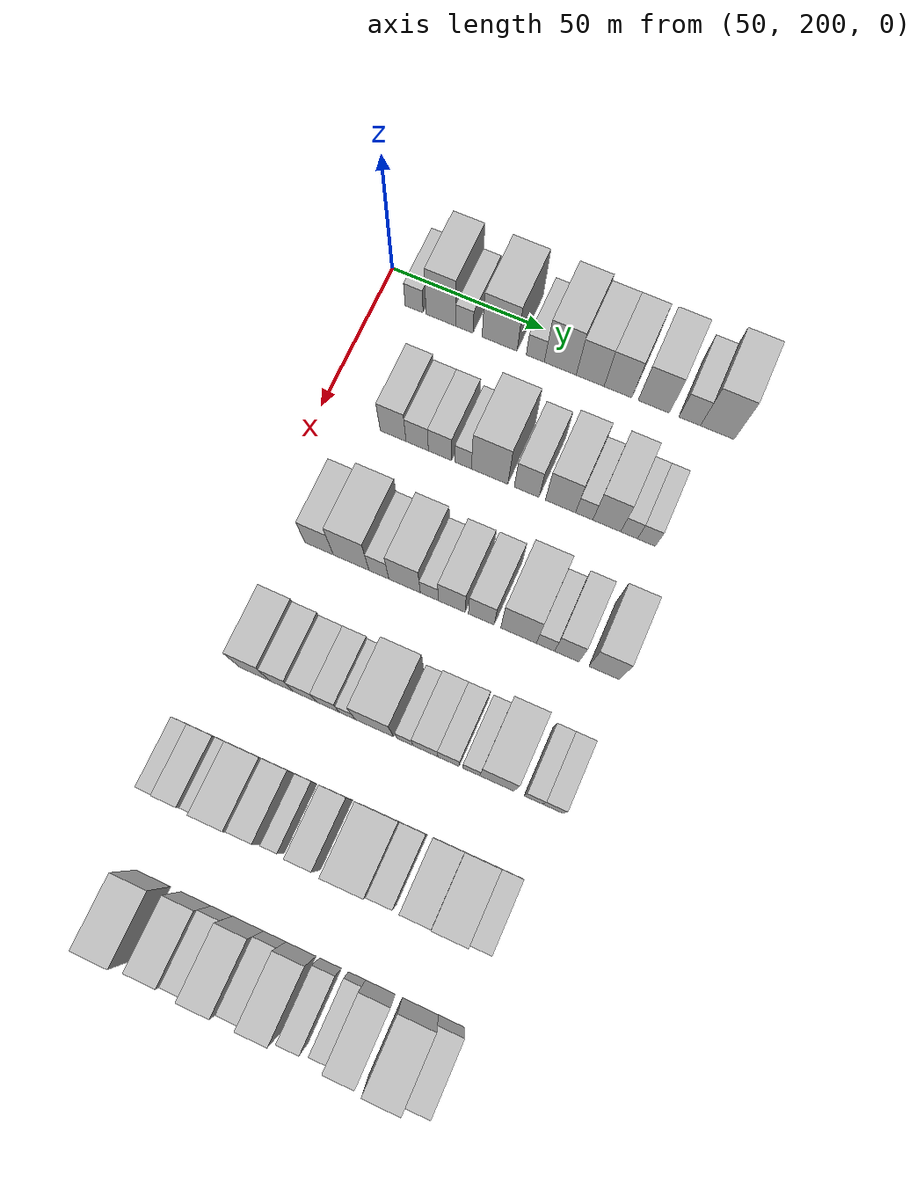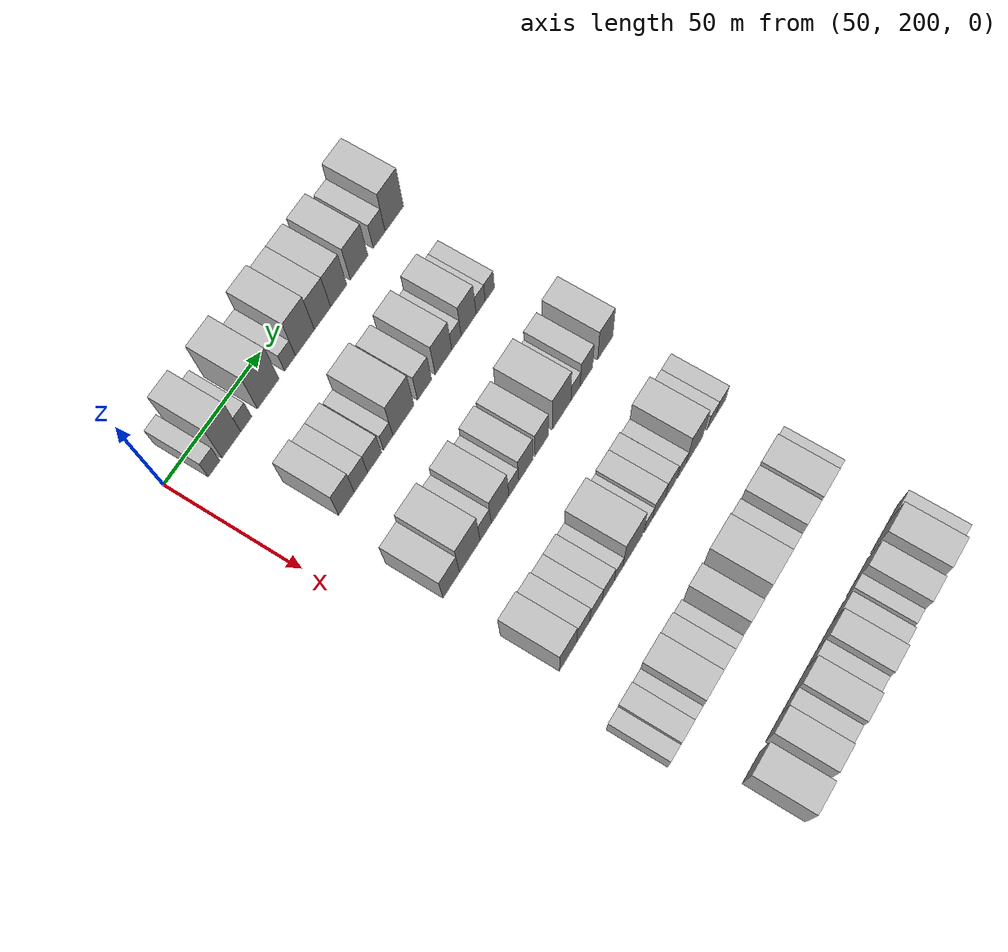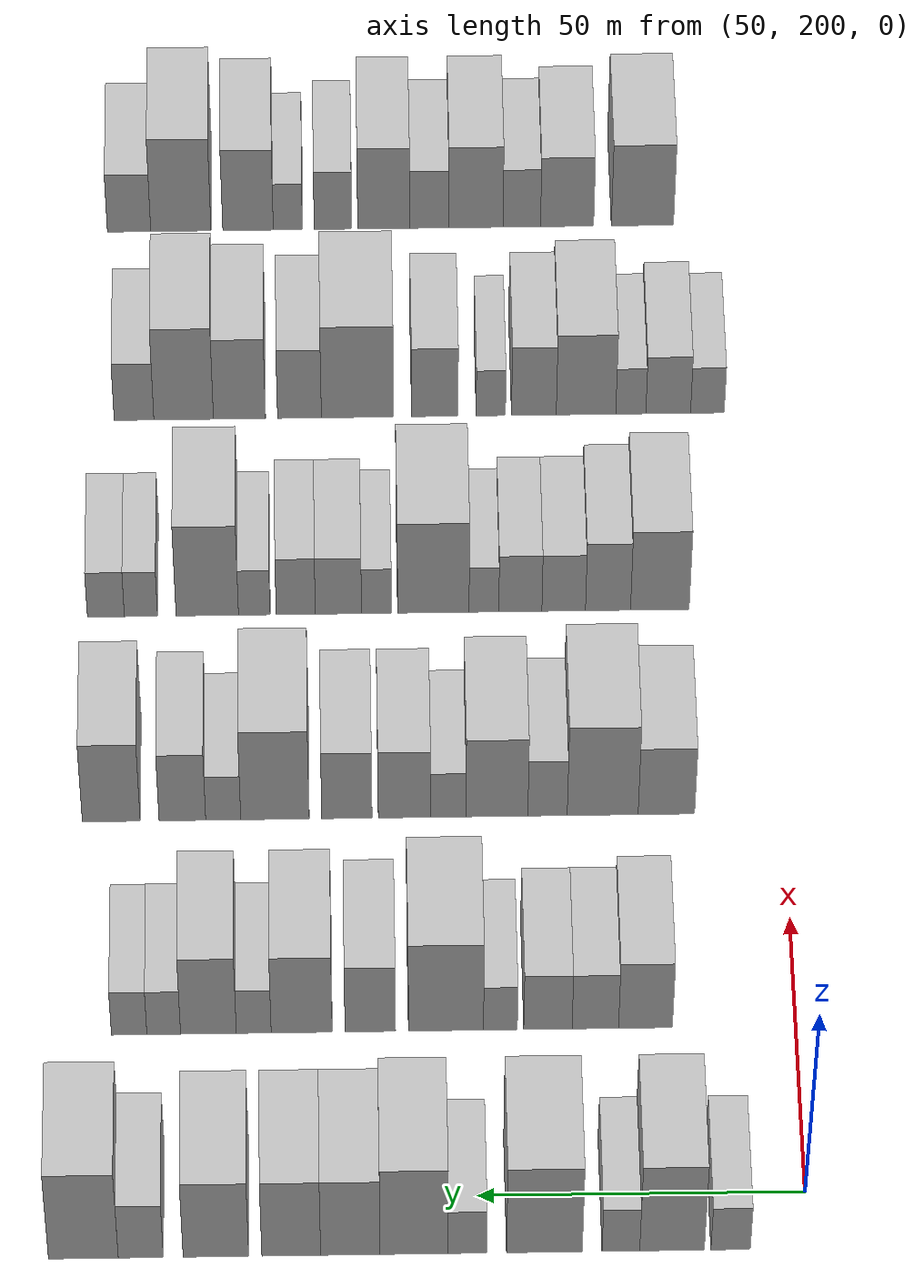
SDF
<sdf version="1.6">
 <world name="default">
  <model name="building_86">
   <static>1</static>
   <pose>50.0000 211.8494 0 0.000000 0.000000 0.000000</pose>
   <link name="link">
    <pose>0 0 6.00 0 0 0</pose>
    <collision name="collision"><geometry><box><size>20.0000 5.9674 12.0000</size></box></geometry></collision>
    <visual name="visual">
     <cast_shadows>0</cast_shadows>
     <geometry><box><size>20.0000 5.9674 12.0000</size></box></geometry>
     <material>
      <script>
       <uri>model://HANNAS_wall/materials/scripts</uri>
       <uri>model://HANNAS_wall/materials/textures</uri>
       <name>vrc/HANNAS_wall</name>
      </script>
     </material>
    </visual>
   </link>
  </model>
  <model name="building_87">
   <static>1</static>
   <pose>50.0000 220.7346 0 0.000000 0.000000 0.000000</pose>
   <link name="link">
    <pose>0 0 12.00 0 0 0</pose>
    <collision name="collision"><geometry><box><size>20.0000 9.8029 24.0000</size></box></geometry></collision>
    <visual name="visual">
     <cast_shadows>0</cast_shadows>
     <geometry><box><size>20.0000 9.8029 24.0000</size></box></geometry>
     <material>
      <script>
       <uri>model://HANNAS_wall/materials/scripts</uri>
       <uri>model://HANNAS_wall/materials/textures</uri>
       <name>vrc/HANNAS_wall</name>
      </script>
     </material>
    </visual>
   </link>
  </model>
  <model name="building_88">
   <static>1</static>
   <pose>50.0000 228.4900 0 0.000000 0.000000 0.000000</pose>
   <link name="link">
    <pose>0 0 6.00 0 0 0</pose>
    <collision name="collision"><geometry><box><size>20.0000 5.7079 12.0000</size></box></geometry></collision>
    <visual name="visual">
     <cast_shadows>0</cast_shadows>
     <geometry><box><size>20.0000 5.7079 12.0000</size></box></geometry>
     <material>
      <script>
       <uri>model://HANNAS_wall/materials/scripts</uri>
       <uri>model://HANNAS_wall/materials/textures</uri>
       <name>vrc/HANNAS_wall</name>
      </script>
     </material>
    </visual>
   </link>
  </model>
  <model name="building_89">
   <static>1</static>
   <pose>50.0000 240.0801 0 0.000000 0.000000 0.000000</pose>
   <link name="link">
    <pose>0 0 12.00 0 0 0</pose>
    <collision name="collision"><geometry><box><size>20.0000 11.4722 24.0000</size></box></geometry></collision>
    <visual name="visual">
     <cast_shadows>0</cast_shadows>
     <geometry><box><size>20.0000 11.4722 24.0000</size></box></geometry>
     <material>
      <script>
       <uri>model://HANNAS_wall/materials/scripts</uri>
       <uri>model://HANNAS_wall/materials/textures</uri>
       <name>vrc/HANNAS_wall</name>
      </script>
     </material>
    </visual>
   </link>
  </model>
  <model name="building_90">
   <static>1</static>
   <pose>50.0000 251.7598 0 0.000000 0.000000 0.000000</pose>
   <link name="link">
    <pose>0 0 6.00 0 0 0</pose>
    <collision name="collision"><geometry><box><size>20.0000 5.8871 12.0000</size></box></geometry></collision>
    <visual name="visual">
     <cast_shadows>0</cast_shadows>
     <geometry><box><size>20.0000 5.8871 12.0000</size></box></geometry>
     <material>
      <script>
       <uri>model://HANNAS_wall/materials/scripts</uri>
       <uri>model://HANNAS_wall/materials/textures</uri>
       <name>vrc/HANNAS_wall</name>
      </script>
     </material>
    </visual>
   </link>
  </model>
  <model name="building_91">
   <static>1</static>
   <pose>50.0000 259.8462 0 0.000000 0.000000 0.000000</pose>
   <link name="link">
    <pose>0 0 12.00 0 0 0</pose>
    <collision name="collision"><geometry><box><size>20.0000 10.2856 24.0000</size></box></geometry></collision>
    <visual name="visual">
     <cast_shadows>0</cast_shadows>
     <geometry><box><size>20.0000 10.2856 24.0000</size></box></geometry>
     <material>
      <script>
       <uri>model://HANNAS_wall/materials/scripts</uri>
       <uri>model://HANNAS_wall/materials/textures</uri>
       <name>vrc/HANNAS_wall</name>
      </script>
     </material>
    </visual>
   </link>
  </model>
  <model name="building_92">
   <static>1</static>
   <pose>50.0000 269.4874 0 0.000000 0.000000 0.000000</pose>
   <link name="link">
    <pose>0 0 10.50 0 0 0</pose>
    <collision name="collision"><geometry><box><size>20.0000 8.9970 21.0000</size></box></geometry></collision>
    <visual name="visual">
     <cast_shadows>0</cast_shadows>
     <geometry><box><size>20.0000 8.9970 21.0000</size></box></geometry>
     <material>
      <script>
       <uri>model://HANNAS_wall/materials/scripts</uri>
       <uri>model://HANNAS_wall/materials/textures</uri>
       <name>vrc/HANNAS_wall</name>
      </script>
     </material>
    </visual>
   </link>
  </model>
  <model name="building_93">
   <static>1</static>
   <pose>50.0000 278.4391 0 0.000000 0.000000 0.000000</pose>
   <link name="link">
    <pose>0 0 10.50 0 0 0</pose>
    <collision name="collision"><geometry><box><size>20.0000 8.9065 21.0000</size></box></geometry></collision>
    <visual name="visual">
     <cast_shadows>0</cast_shadows>
     <geometry><box><size>20.0000 8.9065 21.0000</size></box></geometry>
     <material>
      <script>
       <uri>model://HANNAS_wall/materials/scripts</uri>
       <uri>model://HANNAS_wall/materials/textures</uri>
       <name>vrc/HANNAS_wall</name>
      </script>
     </material>
    </visual>
   </link>
  </model>
  <model name="building_94">
   <static>1</static>
   <pose>50.0000 289.8566 0 0.000000 0.000000 0.000000</pose>
   <link name="link">
    <pose>0 0 10.50 0 0 0</pose>
    <collision name="collision"><geometry><box><size>20.0000 9.9284 21.0000</size></box></geometry></collision>
    <visual name="visual">
     <cast_shadows>0</cast_shadows>
     <geometry><box><size>20.0000 9.9284 21.0000</size></box></geometry>
     <material>
      <script>
       <uri>model://HANNAS_wall/materials/scripts</uri>
       <uri>model://HANNAS_wall/materials/textures</uri>
       <name>vrc/HANNAS_wall</name>
      </script>
     </material>
    </visual>
   </link>
  </model>
  <model name="building_95">
   <static>1</static>
   <pose>50.0000 301.2341 0 0.000000 0.000000 0.000000</pose>
   <link name="link">
    <pose>0 0 7.50 0 0 0</pose>
    <collision name="collision"><geometry><box><size>20.0000 6.8267 15.0000</size></box></geometry></collision>
    <visual name="visual">
     <cast_shadows>0</cast_shadows>
     <geometry><box><size>20.0000 6.8267 15.0000</size></box></geometry>
     <material>
      <script>
       <uri>model://HANNAS_wall/materials/scripts</uri>
       <uri>model://HANNAS_wall/materials/textures</uri>
       <name>vrc/HANNAS_wall</name>
      </script>
     </material>
    </visual>
   </link>
  </model>
  <model name="building_96">
   <static>1</static>
   <pose>50.0000 309.9277 0 0.000000 0.000000 0.000000</pose>
   <link name="link">
    <pose>0 0 12.00 0 0 0</pose>
    <collision name="collision"><geometry><box><size>20.0000 10.5604 24.0000</size></box></geometry></collision>
    <visual name="visual">
     <cast_shadows>0</cast_shadows>
     <geometry><box><size>20.0000 10.5604 24.0000</size></box></geometry>
     <material>
      <script>
       <uri>model://HANNAS_wall/materials/scripts</uri>
       <uri>model://HANNAS_wall/materials/textures</uri>
       <name>vrc/HANNAS_wall</name>
      </script>
     </material>
    </visual>
   </link>
  </model>
  <model name="building_218">
   <static>1</static>
   <pose>90.0000 223.3924 0 0.000000 0.000000 0.000000</pose>
   <link name="link">
    <pose>0 0 9.00 0 0 0</pose>
    <collision name="collision"><geometry><box><size>20.0000 8.3434 18.0000</size></box></geometry></collision>
    <visual name="visual">
     <cast_shadows>0</cast_shadows>
     <geometry><box><size>20.0000 8.3434 18.0000</size></box></geometry>
     <material>
      <script>
       <uri>model://HANNAS_wall/materials/scripts</uri>
       <uri>model://HANNAS_wall/materials/textures</uri>
       <name>vrc/HANNAS_wall</name>
      </script>
     </material>
    </visual>
   </link>
  </model>
  <model name="building_219">
   <static>1</static>
   <pose>90.0000 231.1657 0 0.000000 0.000000 0.000000</pose>
   <link name="link">
    <pose>0 0 7.50 0 0 0</pose>
    <collision name="collision"><geometry><box><size>20.0000 7.2032 15.0000</size></box></geometry></collision>
    <visual name="visual">
     <cast_shadows>0</cast_shadows>
     <geometry><box><size>20.0000 7.2032 15.0000</size></box></geometry>
     <material>
      <script>
       <uri>model://HANNAS_wall/materials/scripts</uri>
       <uri>model://HANNAS_wall/materials/textures</uri>
       <name>vrc/HANNAS_wall</name>
      </script>
     </material>
    </visual>
   </link>
  </model>
  <model name="building_220">
   <static>1</static>
   <pose>90.0000 238.5093 0 0.000000 0.000000 0.000000</pose>
   <link name="link">
    <pose>0 0 7.50 0 0 0</pose>
    <collision name="collision"><geometry><box><size>20.0000 7.4840 15.0000</size></box></geometry></collision>
    <visual name="visual">
     <cast_shadows>0</cast_shadows>
     <geometry><box><size>20.0000 7.4840 15.0000</size></box></geometry>
     <material>
      <script>
       <uri>model://HANNAS_wall/materials/scripts</uri>
       <uri>model://HANNAS_wall/materials/textures</uri>
       <name>vrc/HANNAS_wall</name>
      </script>
     </material>
    </visual>
   </link>
  </model>
  <model name="building_221">
   <static>1</static>
   <pose>90.0000 245.8730 0 0.000000 0.000000 0.000000</pose>
   <link name="link">
    <pose>0 0 6.00 0 0 0</pose>
    <collision name="collision"><geometry><box><size>20.0000 5.2434 12.0000</size></box></geometry></collision>
    <visual name="visual">
     <cast_shadows>0</cast_shadows>
     <geometry><box><size>20.0000 5.2434 12.0000</size></box></geometry>
     <material>
      <script>
       <uri>model://HANNAS_wall/materials/scripts</uri>
       <uri>model://HANNAS_wall/materials/textures</uri>
       <name>vrc/HANNAS_wall</name>
      </script>
     </material>
    </visual>
   </link>
  </model>
  <model name="building_222">
   <static>1</static>
   <pose>90.0000 254.3017 0 0.000000 0.000000 0.000000</pose>
   <link name="link">
    <pose>0 0 12.00 0 0 0</pose>
    <collision name="collision"><geometry><box><size>20.0000 11.6140 24.0000</size></box></geometry></collision>
    <visual name="visual">
     <cast_shadows>0</cast_shadows>
     <geometry><box><size>20.0000 11.6140 24.0000</size></box></geometry>
     <material>
      <script>
       <uri>model://HANNAS_wall/materials/scripts</uri>
       <uri>model://HANNAS_wall/materials/textures</uri>
       <name>vrc/HANNAS_wall</name>
      </script>
     </material>
    </visual>
   </link>
  </model>
  <model name="building_223">
   <static>1</static>
   <pose>90.0000 266.0186 0 0.000000 0.000000 0.000000</pose>
   <link name="link">
    <pose>0 0 9.00 0 0 0</pose>
    <collision name="collision"><geometry><box><size>20.0000 7.8198 18.0000</size></box></geometry></collision>
    <visual name="visual">
     <cast_shadows>0</cast_shadows>
     <geometry><box><size>20.0000 7.8198 18.0000</size></box></geometry>
     <material>
      <script>
       <uri>model://HANNAS_wall/materials/scripts</uri>
       <uri>model://HANNAS_wall/materials/textures</uri>
       <name>vrc/HANNAS_wall</name>
      </script>
     </material>
    </visual>
   </link>
  </model>
  <model name="building_224">
   <static>1</static>
   <pose>90.0000 276.6530 0 0.000000 0.000000 0.000000</pose>
   <link name="link">
    <pose>0 0 10.50 0 0 0</pose>
    <collision name="collision"><geometry><box><size>20.0000 9.4490 21.0000</size></box></geometry></collision>
    <visual name="visual">
     <cast_shadows>0</cast_shadows>
     <geometry><box><size>20.0000 9.4490 21.0000</size></box></geometry>
     <material>
      <script>
       <uri>model://HANNAS_wall/materials/scripts</uri>
       <uri>model://HANNAS_wall/materials/textures</uri>
       <name>vrc/HANNAS_wall</name>
      </script>
     </material>
    </visual>
   </link>
  </model>
  <model name="building_225">
   <static>1</static>
   <pose>90.0000 284.0749 0 0.000000 0.000000 0.000000</pose>
   <link name="link">
    <pose>0 0 6.00 0 0 0</pose>
    <collision name="collision"><geometry><box><size>20.0000 5.3949 12.0000</size></box></geometry></collision>
    <visual name="visual">
     <cast_shadows>0</cast_shadows>
     <geometry><box><size>20.0000 5.3949 12.0000</size></box></geometry>
     <material>
      <script>
       <uri>model://HANNAS_wall/materials/scripts</uri>
       <uri>model://HANNAS_wall/materials/textures</uri>
       <name>vrc/HANNAS_wall</name>
      </script>
     </material>
    </visual>
   </link>
  </model>
  <model name="building_226">
   <static>1</static>
   <pose>90.0000 291.0913 0 0.000000 0.000000 0.000000</pose>
   <link name="link">
    <pose>0 0 10.50 0 0 0</pose>
    <collision name="collision"><geometry><box><size>20.0000 8.6378 21.0000</size></box></geometry></collision>
    <visual name="visual">
     <cast_shadows>0</cast_shadows>
     <geometry><box><size>20.0000 8.6378 21.0000</size></box></geometry>
     <material>
      <script>
       <uri>model://HANNAS_wall/materials/scripts</uri>
       <uri>model://HANNAS_wall/materials/textures</uri>
       <name>vrc/HANNAS_wall</name>
      </script>
     </material>
    </visual>
   </link>
  </model>
  <model name="building_227">
   <static>1</static>
   <pose>90.0000 298.0168 0 0.000000 0.000000 0.000000</pose>
   <link name="link">
    <pose>0 0 6.00 0 0 0</pose>
    <collision name="collision"><geometry><box><size>20.0000 5.2132 12.0000</size></box></geometry></collision>
    <visual name="visual">
     <cast_shadows>0</cast_shadows>
     <geometry><box><size>20.0000 5.2132 12.0000</size></box></geometry>
     <material>
      <script>
       <uri>model://HANNAS_wall/materials/scripts</uri>
       <uri>model://HANNAS_wall/materials/textures</uri>
       <name>vrc/HANNAS_wall</name>
      </script>
     </material>
    </visual>
   </link>
  </model>
  <model name="building_228">
   <static>1</static>
   <pose>90.0000 303.3634 0 0.000000 0.000000 0.000000</pose>
   <link name="link">
    <pose>0 0 6.00 0 0 0</pose>
    <collision name="collision"><geometry><box><size>20.0000 5.4800 12.0000</size></box></geometry></collision>
    <visual name="visual">
     <cast_shadows>0</cast_shadows>
     <geometry><box><size>20.0000 5.4800 12.0000</size></box></geometry>
     <material>
      <script>
       <uri>model://HANNAS_wall/materials/scripts</uri>
       <uri>model://HANNAS_wall/materials/textures</uri>
       <name>vrc/HANNAS_wall</name>
      </script>
     </material>
    </visual>
   </link>
  </model>
  <model name="building_350">
   <static>1</static>
   <pose>130.0000 218.7089 0 0.000000 0.000000 0.000000</pose>
   <link name="link">
    <pose>0 0 9.00 0 0 0</pose>
    <collision name="collision"><geometry><box><size>20.0000 8.9440 18.0000</size></box></geometry></collision>
    <visual name="visual">
     <cast_shadows>0</cast_shadows>
     <geometry><box><size>20.0000 8.9440 18.0000</size></box></geometry>
     <material>
      <script>
       <uri>model://HANNAS_wall/materials/scripts</uri>
       <uri>model://HANNAS_wall/materials/textures</uri>
       <name>vrc/HANNAS_wall</name>
      </script>
     </material>
    </visual>
   </link>
  </model>
  <model name="building_351">
   <static>1</static>
   <pose>130.0000 228.7955 0 0.000000 0.000000 0.000000</pose>
   <link name="link">
    <pose>0 0 12.00 0 0 0</pose>
    <collision name="collision"><geometry><box><size>20.0000 11.2291 24.0000</size></box></geometry></collision>
    <visual name="visual">
     <cast_shadows>0</cast_shadows>
     <geometry><box><size>20.0000 11.2291 24.0000</size></box></geometry>
     <material>
      <script>
       <uri>model://HANNAS_wall/materials/scripts</uri>
       <uri>model://HANNAS_wall/materials/textures</uri>
       <name>vrc/HANNAS_wall</name>
      </script>
     </material>
    </visual>
   </link>
  </model>
  <model name="building_352">
   <static>1</static>
   <pose>130.0000 237.5260 0 0.000000 0.000000 0.000000</pose>
   <link name="link">
    <pose>0 0 7.50 0 0 0</pose>
    <collision name="collision"><geometry><box><size>20.0000 6.2319 15.0000</size></box></geometry></collision>
    <visual name="visual">
     <cast_shadows>0</cast_shadows>
     <geometry><box><size>20.0000 6.2319 15.0000</size></box></geometry>
     <material>
      <script>
       <uri>model://HANNAS_wall/materials/scripts</uri>
       <uri>model://HANNAS_wall/materials/textures</uri>
       <name>vrc/HANNAS_wall</name>
      </script>
     </material>
    </visual>
   </link>
  </model>
  <model name="building_353">
   <static>1</static>
   <pose>130.0000 245.5406 0 0.000000 0.000000 0.000000</pose>
   <link name="link">
    <pose>0 0 10.50 0 0 0</pose>
    <collision name="collision"><geometry><box><size>20.0000 9.7974 21.0000</size></box></geometry></collision>
    <visual name="visual">
     <cast_shadows>0</cast_shadows>
     <geometry><box><size>20.0000 9.7974 21.0000</size></box></geometry>
     <material>
      <script>
       <uri>model://HANNAS_wall/materials/scripts</uri>
       <uri>model://HANNAS_wall/materials/textures</uri>
       <name>vrc/HANNAS_wall</name>
      </script>
     </material>
    </visual>
   </link>
  </model>
  <model name="building_354">
   <static>1</static>
   <pose>130.0000 253.2370 0 0.000000 0.000000 0.000000</pose>
   <link name="link">
    <pose>0 0 6.00 0 0 0</pose>
    <collision name="collision"><geometry><box><size>20.0000 5.5955 12.0000</size></box></geometry></collision>
    <visual name="visual">
     <cast_shadows>0</cast_shadows>
     <geometry><box><size>20.0000 5.5955 12.0000</size></box></geometry>
     <material>
      <script>
       <uri>model://HANNAS_wall/materials/scripts</uri>
       <uri>model://HANNAS_wall/materials/textures</uri>
       <name>vrc/HANNAS_wall</name>
      </script>
     </material>
    </visual>
   </link>
  </model>
  <model name="building_355">
   <static>1</static>
   <pose>130.0000 260.1692 0 0.000000 0.000000 0.000000</pose>
   <link name="link">
    <pose>0 0 9.00 0 0 0</pose>
    <collision name="collision"><geometry><box><size>20.0000 8.2689 18.0000</size></box></geometry></collision>
    <visual name="visual">
     <cast_shadows>0</cast_shadows>
     <geometry><box><size>20.0000 8.2689 18.0000</size></box></geometry>
     <material>
      <script>
       <uri>model://HANNAS_wall/materials/scripts</uri>
       <uri>model://HANNAS_wall/materials/textures</uri>
       <name>vrc/HANNAS_wall</name>
      </script>
     </material>
    </visual>
   </link>
  </model>
  <model name="building_356">
   <static>1</static>
   <pose>130.0000 269.2740 0 0.000000 0.000000 0.000000</pose>
   <link name="link">
    <pose>0 0 9.00 0 0 0</pose>
    <collision name="collision"><geometry><box><size>20.0000 7.9407 18.0000</size></box></geometry></collision>
    <visual name="visual">
     <cast_shadows>0</cast_shadows>
     <geometry><box><size>20.0000 7.9407 18.0000</size></box></geometry>
     <material>
      <script>
       <uri>model://HANNAS_wall/materials/scripts</uri>
       <uri>model://HANNAS_wall/materials/textures</uri>
       <name>vrc/HANNAS_wall</name>
      </script>
     </material>
    </visual>
   </link>
  </model>
  <model name="building_357">
   <static>1</static>
   <pose>130.0000 280.6599 0 0.000000 0.000000 0.000000</pose>
   <link name="link">
    <pose>0 0 12.00 0 0 0</pose>
    <collision name="collision"><geometry><box><size>20.0000 10.8312 24.0000</size></box></geometry></collision>
    <visual name="visual">
     <cast_shadows>0</cast_shadows>
     <geometry><box><size>20.0000 10.8312 24.0000</size></box></geometry>
     <material>
      <script>
       <uri>model://HANNAS_wall/materials/scripts</uri>
       <uri>model://HANNAS_wall/materials/textures</uri>
       <name>vrc/HANNAS_wall</name>
      </script>
     </material>
    </visual>
   </link>
  </model>
  <model name="building_358">
   <static>1</static>
   <pose>130.0000 288.8513 0 0.000000 0.000000 0.000000</pose>
   <link name="link">
    <pose>0 0 6.00 0 0 0</pose>
    <collision name="collision"><geometry><box><size>20.0000 5.5516 12.0000</size></box></geometry></collision>
    <visual name="visual">
     <cast_shadows>0</cast_shadows>
     <geometry><box><size>20.0000 5.5516 12.0000</size></box></geometry>
     <material>
      <script>
       <uri>model://HANNAS_wall/materials/scripts</uri>
       <uri>model://HANNAS_wall/materials/textures</uri>
       <name>vrc/HANNAS_wall</name>
      </script>
     </material>
    </visual>
   </link>
  </model>
  <model name="building_359">
   <static>1</static>
   <pose>130.0000 295.3105 0 0.000000 0.000000 0.000000</pose>
   <link name="link">
    <pose>0 0 9.00 0 0 0</pose>
    <collision name="collision"><geometry><box><size>20.0000 7.3666 18.0000</size></box></geometry></collision>
    <visual name="visual">
     <cast_shadows>0</cast_shadows>
     <geometry><box><size>20.0000 7.3666 18.0000</size></box></geometry>
     <material>
      <script>
       <uri>model://HANNAS_wall/materials/scripts</uri>
       <uri>model://HANNAS_wall/materials/textures</uri>
       <name>vrc/HANNAS_wall</name>
      </script>
     </material>
    </visual>
   </link>
  </model>
  <model name="building_360">
   <static>1</static>
   <pose>130.0000 306.5625 0 0.000000 0.000000 0.000000</pose>
   <link name="link">
    <pose>0 0 10.50 0 0 0</pose>
    <collision name="collision"><geometry><box><size>20.0000 9.1374 21.0000</size></box></geometry></collision>
    <visual name="visual">
     <cast_shadows>0</cast_shadows>
     <geometry><box><size>20.0000 9.1374 21.0000</size></box></geometry>
     <material>
      <script>
       <uri>model://HANNAS_wall/materials/scripts</uri>
       <uri>model://HANNAS_wall/materials/textures</uri>
       <name>vrc/HANNAS_wall</name>
      </script>
     </material>
    </visual>
   </link>
  </model>
  <model name="building_492">
   <static>1</static>
   <pose>170.0000 218.3264 0 0.000000 0.000000 0.000000</pose>
   <link name="link">
    <pose>0 0 10.50 0 0 0</pose>
    <collision name="collision"><geometry><box><size>20.0000 9.4702 21.0000</size></box></geometry></collision>
    <visual name="visual">
     <cast_shadows>0</cast_shadows>
     <geometry><box><size>20.0000 9.4702 21.0000</size></box></geometry>
     <material>
      <script>
       <uri>model://HANNAS_wall/materials/scripts</uri>
       <uri>model://HANNAS_wall/materials/textures</uri>
       <name>vrc/HANNAS_wall</name>
      </script>
     </material>
    </visual>
   </link>
  </model>
  <model name="building_493">
   <static>1</static>
   <pose>170.0000 226.7028 0 0.000000 0.000000 0.000000</pose>
   <link name="link">
    <pose>0 0 9.00 0 0 0</pose>
    <collision name="collision"><geometry><box><size>20.0000 7.2827 18.0000</size></box></geometry></collision>
    <visual name="visual">
     <cast_shadows>0</cast_shadows>
     <geometry><box><size>20.0000 7.2827 18.0000</size></box></geometry>
     <material>
      <script>
       <uri>model://HANNAS_wall/materials/scripts</uri>
       <uri>model://HANNAS_wall/materials/textures</uri>
       <name>vrc/HANNAS_wall</name>
      </script>
     </material>
    </visual>
   </link>
  </model>
  <model name="building_494">
   <static>1</static>
   <pose>170.0000 233.8704 0 0.000000 0.000000 0.000000</pose>
   <link name="link">
    <pose>0 0 7.50 0 0 0</pose>
    <collision name="collision"><geometry><box><size>20.0000 7.0526 15.0000</size></box></geometry></collision>
    <visual name="visual">
     <cast_shadows>0</cast_shadows>
     <geometry><box><size>20.0000 7.0526 15.0000</size></box></geometry>
     <material>
      <script>
       <uri>model://HANNAS_wall/materials/scripts</uri>
       <uri>model://HANNAS_wall/materials/textures</uri>
       <name>vrc/HANNAS_wall</name>
      </script>
     </material>
    </visual>
   </link>
  </model>
  <model name="building_495">
   <static>1</static>
   <pose>170.0000 240.8802 0 0.000000 0.000000 0.000000</pose>
   <link name="link">
    <pose>0 0 7.50 0 0 0</pose>
    <collision name="collision"><geometry><box><size>20.0000 6.9671 15.0000</size></box></geometry></collision>
    <visual name="visual">
     <cast_shadows>0</cast_shadows>
     <geometry><box><size>20.0000 6.9671 15.0000</size></box></geometry>
     <material>
      <script>
       <uri>model://HANNAS_wall/materials/scripts</uri>
       <uri>model://HANNAS_wall/materials/textures</uri>
       <name>vrc/HANNAS_wall</name>
      </script>
     </material>
    </visual>
   </link>
  </model>
  <model name="building_496">
   <static>1</static>
   <pose>170.0000 246.7692 0 0.000000 0.000000 0.000000</pose>
   <link name="link">
    <pose>0 0 6.00 0 0 0</pose>
    <collision name="collision"><geometry><box><size>20.0000 4.8109 12.0000</size></box></geometry></collision>
    <visual name="visual">
     <cast_shadows>0</cast_shadows>
     <geometry><box><size>20.0000 4.8109 12.0000</size></box></geometry>
     <material>
      <script>
       <uri>model://HANNAS_wall/materials/scripts</uri>
       <uri>model://HANNAS_wall/materials/textures</uri>
       <name>vrc/HANNAS_wall</name>
      </script>
     </material>
    </visual>
   </link>
  </model>
  <model name="building_497">
   <static>1</static>
   <pose>170.0000 254.9441 0 0.000000 0.000000 0.000000</pose>
   <link name="link">
    <pose>0 0 12.00 0 0 0</pose>
    <collision name="collision"><geometry><box><size>20.0000 11.5389 24.0000</size></box></geometry></collision>
    <visual name="visual">
     <cast_shadows>0</cast_shadows>
     <geometry><box><size>20.0000 11.5389 24.0000</size></box></geometry>
     <material>
      <script>
       <uri>model://HANNAS_wall/materials/scripts</uri>
       <uri>model://HANNAS_wall/materials/textures</uri>
       <name>vrc/HANNAS_wall</name>
      </script>
     </material>
    </visual>
   </link>
  </model>
  <model name="building_498">
   <static>1</static>
   <pose>170.0000 264.1340 0 0.000000 0.000000 0.000000</pose>
   <link name="link">
    <pose>0 0 6.00 0 0 0</pose>
    <collision name="collision"><geometry><box><size>20.0000 4.8408 12.0000</size></box></geometry></collision>
    <visual name="visual">
     <cast_shadows>0</cast_shadows>
     <geometry><box><size>20.0000 4.8408 12.0000</size></box></geometry>
     <material>
      <script>
       <uri>model://HANNAS_wall/materials/scripts</uri>
       <uri>model://HANNAS_wall/materials/textures</uri>
       <name>vrc/HANNAS_wall</name>
      </script>
     </material>
    </visual>
   </link>
  </model>
  <model name="building_499">
   <static>1</static>
   <pose>170.0000 270.2805 0 0.000000 0.000000 0.000000</pose>
   <link name="link">
    <pose>0 0 7.50 0 0 0</pose>
    <collision name="collision"><geometry><box><size>20.0000 7.4522 15.0000</size></box></geometry></collision>
    <visual name="visual">
     <cast_shadows>0</cast_shadows>
     <geometry><box><size>20.0000 7.4522 15.0000</size></box></geometry>
     <material>
      <script>
       <uri>model://HANNAS_wall/materials/scripts</uri>
       <uri>model://HANNAS_wall/materials/textures</uri>
       <name>vrc/HANNAS_wall</name>
      </script>
     </material>
    </visual>
   </link>
  </model>
  <model name="building_500">
   <static>1</static>
   <pose>170.0000 277.1647 0 0.000000 0.000000 0.000000</pose>
   <link name="link">
    <pose>0 0 7.50 0 0 0</pose>
    <collision name="collision"><geometry><box><size>20.0000 6.3161 15.0000</size></box></geometry></collision>
    <visual name="visual">
     <cast_shadows>0</cast_shadows>
     <geometry><box><size>20.0000 6.3161 15.0000</size></box></geometry>
     <material>
      <script>
       <uri>model://HANNAS_wall/materials/scripts</uri>
       <uri>model://HANNAS_wall/materials/textures</uri>
       <name>vrc/HANNAS_wall</name>
      </script>
     </material>
    </visual>
   </link>
  </model>
  <model name="building_501">
   <static>1</static>
   <pose>170.0000 283.8808 0 0.000000 0.000000 0.000000</pose>
   <link name="link">
    <pose>0 0 6.00 0 0 0</pose>
    <collision name="collision"><geometry><box><size>20.0000 5.1161 12.0000</size></box></geometry></collision>
    <visual name="visual">
     <cast_shadows>0</cast_shadows>
     <geometry><box><size>20.0000 5.1161 12.0000</size></box></geometry>
     <material>
      <script>
       <uri>model://HANNAS_wall/materials/scripts</uri>
       <uri>model://HANNAS_wall/materials/textures</uri>
       <name>vrc/HANNAS_wall</name>
      </script>
     </material>
    </visual>
   </link>
  </model>
  <model name="building_502">
   <static>1</static>
   <pose>170.0000 291.4764 0 0.000000 0.000000 0.000000</pose>
   <link name="link">
    <pose>0 0 12.00 0 0 0</pose>
    <collision name="collision"><geometry><box><size>20.0000 10.0750 24.0000</size></box></geometry></collision>
    <visual name="visual">
     <cast_shadows>0</cast_shadows>
     <geometry><box><size>20.0000 10.0750 24.0000</size></box></geometry>
     <material>
      <script>
       <uri>model://HANNAS_wall/materials/scripts</uri>
       <uri>model://HANNAS_wall/materials/textures</uri>
       <name>vrc/HANNAS_wall</name>
      </script>
     </material>
    </visual>
   </link>
  </model>
  <model name="building_503">
   <static>1</static>
   <pose>170.0000 302.1935 0 0.000000 0.000000 0.000000</pose>
   <link name="link">
    <pose>0 0 6.00 0 0 0</pose>
    <collision name="collision"><geometry><box><size>20.0000 5.3593 12.0000</size></box></geometry></collision>
    <visual name="visual">
     <cast_shadows>0</cast_shadows>
     <geometry><box><size>20.0000 5.3593 12.0000</size></box></geometry>
     <material>
      <script>
       <uri>model://HANNAS_wall/materials/scripts</uri>
       <uri>model://HANNAS_wall/materials/textures</uri>
       <name>vrc/HANNAS_wall</name>
      </script>
     </material>
    </visual>
   </link>
  </model>
  <model name="building_504">
   <static>1</static>
   <pose>170.0000 307.8548 0 0.000000 0.000000 0.000000</pose>
   <link name="link">
    <pose>0 0 6.00 0 0 0</pose>
    <collision name="collision"><geometry><box><size>20.0000 5.9631 12.0000</size></box></geometry></collision>
    <visual name="visual">
     <cast_shadows>0</cast_shadows>
     <geometry><box><size>20.0000 5.9631 12.0000</size></box></geometry>
     <material>
      <script>
       <uri>model://HANNAS_wall/materials/scripts</uri>
       <uri>model://HANNAS_wall/materials/textures</uri>
       <name>vrc/HANNAS_wall</name>
      </script>
     </material>
    </visual>
   </link>
  </model>
  <model name="building_631">
   <static>1</static>
   <pose>210.0000 209.0473 0 0.000000 0.000000 0.000000</pose>
   <link name="link">
    <pose>0 0 6.00 0 0 0</pose>
    <collision name="collision"><geometry><box><size>20.0000 5.5529 12.0000</size></box></geometry></collision>
    <visual name="visual">
     <cast_shadows>0</cast_shadows>
     <geometry><box><size>20.0000 5.5529 12.0000</size></box></geometry>
     <material>
      <script>
       <uri>model://HANNAS_wall/materials/scripts</uri>
       <uri>model://HANNAS_wall/materials/textures</uri>
       <name>vrc/HANNAS_wall</name>
      </script>
     </material>
    </visual>
   </link>
  </model>
  <model name="building_632">
   <static>1</static>
   <pose>210.0000 215.5193 0 0.000000 0.000000 0.000000</pose>
   <link name="link">
    <pose>0 0 7.50 0 0 0</pose>
    <collision name="collision"><geometry><box><size>20.0000 7.3912 15.0000</size></box></geometry></collision>
    <visual name="visual">
     <cast_shadows>0</cast_shadows>
     <geometry><box><size>20.0000 7.3912 15.0000</size></box></geometry>
     <material>
      <script>
       <uri>model://HANNAS_wall/materials/scripts</uri>
       <uri>model://HANNAS_wall/materials/textures</uri>
       <name>vrc/HANNAS_wall</name>
      </script>
     </material>
    </visual>
   </link>
  </model>
  <model name="building_633">
   <static>1</static>
   <pose>210.0000 221.6967 0 0.000000 0.000000 0.000000</pose>
   <link name="link">
    <pose>0 0 6.00 0 0 0</pose>
    <collision name="collision"><geometry><box><size>20.0000 4.9636 12.0000</size></box></geometry></collision>
    <visual name="visual">
     <cast_shadows>0</cast_shadows>
     <geometry><box><size>20.0000 4.9636 12.0000</size></box></geometry>
     <material>
      <script>
       <uri>model://HANNAS_wall/materials/scripts</uri>
       <uri>model://HANNAS_wall/materials/textures</uri>
       <name>vrc/HANNAS_wall</name>
      </script>
     </material>
    </visual>
   </link>
  </model>
  <model name="building_634">
   <static>1</static>
   <pose>210.0000 229.0891 0 0.000000 0.000000 0.000000</pose>
   <link name="link">
    <pose>0 0 10.50 0 0 0</pose>
    <collision name="collision"><geometry><box><size>20.0000 9.8212 21.0000</size></box></geometry></collision>
    <visual name="visual">
     <cast_shadows>0</cast_shadows>
     <geometry><box><size>20.0000 9.8212 21.0000</size></box></geometry>
     <material>
      <script>
       <uri>model://HANNAS_wall/materials/scripts</uri>
       <uri>model://HANNAS_wall/materials/textures</uri>
       <name>vrc/HANNAS_wall</name>
      </script>
     </material>
    </visual>
   </link>
  </model>
  <model name="building_635">
   <static>1</static>
   <pose>210.0000 237.6921 0 0.000000 0.000000 0.000000</pose>
   <link name="link">
    <pose>0 0 9.00 0 0 0</pose>
    <collision name="collision"><geometry><box><size>20.0000 7.3848 18.0000</size></box></geometry></collision>
    <visual name="visual">
     <cast_shadows>0</cast_shadows>
     <geometry><box><size>20.0000 7.3848 18.0000</size></box></geometry>
     <material>
      <script>
       <uri>model://HANNAS_wall/materials/scripts</uri>
       <uri>model://HANNAS_wall/materials/textures</uri>
       <name>vrc/HANNAS_wall</name>
      </script>
     </material>
    </visual>
   </link>
  </model>
  <model name="building_636">
   <static>1</static>
   <pose>210.0000 244.7992 0 0.000000 0.000000 0.000000</pose>
   <link name="link">
    <pose>0 0 6.00 0 0 0</pose>
    <collision name="collision"><geometry><box><size>20.0000 4.8296 12.0000</size></box></geometry></collision>
    <visual name="visual">
     <cast_shadows>0</cast_shadows>
     <geometry><box><size>20.0000 4.8296 12.0000</size></box></geometry>
     <material>
      <script>
       <uri>model://HANNAS_wall/materials/scripts</uri>
       <uri>model://HANNAS_wall/materials/textures</uri>
       <name>vrc/HANNAS_wall</name>
      </script>
     </material>
    </visual>
   </link>
  </model>
  <model name="building_637">
   <static>1</static>
   <pose>210.0000 254.0417 0 0.000000 0.000000 0.000000</pose>
   <link name="link">
    <pose>0 0 9.00 0 0 0</pose>
    <collision name="collision"><geometry><box><size>20.0000 7.6553 18.0000</size></box></geometry></collision>
    <visual name="visual">
     <cast_shadows>0</cast_shadows>
     <geometry><box><size>20.0000 7.6553 18.0000</size></box></geometry>
     <material>
      <script>
       <uri>model://HANNAS_wall/materials/scripts</uri>
       <uri>model://HANNAS_wall/materials/textures</uri>
       <name>vrc/HANNAS_wall</name>
      </script>
     </material>
    </visual>
   </link>
  </model>
  <model name="building_638">
   <static>1</static>
   <pose>210.0000 266.8141 0 0.000000 0.000000 0.000000</pose>
   <link name="link">
    <pose>0 0 12.00 0 0 0</pose>
    <collision name="collision"><geometry><box><size>20.0000 11.8895 24.0000</size></box></geometry></collision>
    <visual name="visual">
     <cast_shadows>0</cast_shadows>
     <geometry><box><size>20.0000 11.8895 24.0000</size></box></geometry>
     <material>
      <script>
       <uri>model://HANNAS_wall/materials/scripts</uri>
       <uri>model://HANNAS_wall/materials/textures</uri>
       <name>vrc/HANNAS_wall</name>
      </script>
     </material>
    </visual>
   </link>
  </model>
  <model name="building_639">
   <static>1</static>
   <pose>210.0000 276.3681 0 0.000000 0.000000 0.000000</pose>
   <link name="link">
    <pose>0 0 9.00 0 0 0</pose>
    <collision name="collision"><geometry><box><size>20.0000 7.2185 18.0000</size></box></geometry></collision>
    <visual name="visual">
     <cast_shadows>0</cast_shadows>
     <geometry><box><size>20.0000 7.2185 18.0000</size></box></geometry>
     <material>
      <script>
       <uri>model://HANNAS_wall/materials/scripts</uri>
       <uri>model://HANNAS_wall/materials/textures</uri>
       <name>vrc/HANNAS_wall</name>
      </script>
     </material>
    </visual>
   </link>
  </model>
  <model name="building_640">
   <static>1</static>
   <pose>210.0000 286.2733 0 0.000000 0.000000 0.000000</pose>
   <link name="link">
    <pose>0 0 10.50 0 0 0</pose>
    <collision name="collision"><geometry><box><size>20.0000 8.5919 21.0000</size></box></geometry></collision>
    <visual name="visual">
     <cast_shadows>0</cast_shadows>
     <geometry><box><size>20.0000 8.5919 21.0000</size></box></geometry>
     <material>
      <script>
       <uri>model://HANNAS_wall/materials/scripts</uri>
       <uri>model://HANNAS_wall/materials/textures</uri>
       <name>vrc/HANNAS_wall</name>
      </script>
     </material>
    </visual>
   </link>
  </model>
  <model name="building_641">
   <static>1</static>
   <pose>210.0000 295.4821 0 0.000000 0.000000 0.000000</pose>
   <link name="link">
    <pose>0 0 12.00 0 0 0</pose>
    <collision name="collision"><geometry><box><size>20.0000 9.8259 24.0000</size></box></geometry></collision>
    <visual name="visual">
     <cast_shadows>0</cast_shadows>
     <geometry><box><size>20.0000 9.8259 24.0000</size></box></geometry>
     <material>
      <script>
       <uri>model://HANNAS_wall/materials/scripts</uri>
       <uri>model://HANNAS_wall/materials/textures</uri>
       <name>vrc/HANNAS_wall</name>
      </script>
     </material>
    </visual>
   </link>
  </model>
  <model name="building_642">
   <static>1</static>
   <pose>210.0000 303.6608 0 0.000000 0.000000 0.000000</pose>
   <link name="link">
    <pose>0 0 7.50 0 0 0</pose>
    <collision name="collision"><geometry><box><size>20.0000 6.5314 15.0000</size></box></geometry></collision>
    <visual name="visual">
     <cast_shadows>0</cast_shadows>
     <geometry><box><size>20.0000 6.5314 15.0000</size></box></geometry>
     <material>
      <script>
       <uri>model://HANNAS_wall/materials/scripts</uri>
       <uri>model://HANNAS_wall/materials/textures</uri>
       <name>vrc/HANNAS_wall</name>
      </script>
     </material>
    </visual>
   </link>
  </model>
  <model name="building_772">
   <static>1</static>
   <pose>250.0000 218.4120 0 0.000000 0.000000 0.000000</pose>
   <link name="link">
    <pose>0 0 10.50 0 0 0</pose>
    <collision name="collision"><geometry><box><size>20.0000 10.4584 21.0000</size></box></geometry></collision>
    <visual name="visual">
     <cast_shadows>0</cast_shadows>
     <geometry><box><size>20.0000 10.4584 21.0000</size></box></geometry>
     <material>
      <script>
       <uri>model://HANNAS_wall/materials/scripts</uri>
       <uri>model://HANNAS_wall/materials/textures</uri>
       <name>vrc/HANNAS_wall</name>
      </script>
     </material>
    </visual>
   </link>
  </model>
  <model name="building_773">
   <static>1</static>
   <pose>250.0000 231.1126 0 0.000000 0.000000 0.000000</pose>
   <link name="link">
    <pose>0 0 9.00 0 0 0</pose>
    <collision name="collision"><geometry><box><size>20.0000 8.9430 18.0000</size></box></geometry></collision>
    <visual name="visual">
     <cast_shadows>0</cast_shadows>
     <geometry><box><size>20.0000 8.9430 18.0000</size></box></geometry>
     <material>
      <script>
       <uri>model://HANNAS_wall/materials/scripts</uri>
       <uri>model://HANNAS_wall/materials/textures</uri>
       <name>vrc/HANNAS_wall</name>
      </script>
     </material>
    </visual>
   </link>
  </model>
  <model name="building_774">
   <static>1</static>
   <pose>250.0000 238.7459 0 0.000000 0.000000 0.000000</pose>
   <link name="link">
    <pose>0 0 7.50 0 0 0</pose>
    <collision name="collision"><geometry><box><size>20.0000 6.3235 15.0000</size></box></geometry></collision>
    <visual name="visual">
     <cast_shadows>0</cast_shadows>
     <geometry><box><size>20.0000 6.3235 15.0000</size></box></geometry>
     <material>
      <script>
       <uri>model://HANNAS_wall/materials/scripts</uri>
       <uri>model://HANNAS_wall/materials/textures</uri>
       <name>vrc/HANNAS_wall</name>
      </script>
     </material>
    </visual>
   </link>
  </model>
  <model name="building_775">
   <static>1</static>
   <pose>250.0000 246.4641 0 0.000000 0.000000 0.000000</pose>
   <link name="link">
    <pose>0 0 10.50 0 0 0</pose>
    <collision name="collision"><geometry><box><size>20.0000 9.1130 21.0000</size></box></geometry></collision>
    <visual name="visual">
     <cast_shadows>0</cast_shadows>
     <geometry><box><size>20.0000 9.1130 21.0000</size></box></geometry>
     <material>
      <script>
       <uri>model://HANNAS_wall/materials/scripts</uri>
       <uri>model://HANNAS_wall/materials/textures</uri>
       <name>vrc/HANNAS_wall</name>
      </script>
     </material>
    </visual>
   </link>
  </model>
  <model name="building_776">
   <static>1</static>
   <pose>250.0000 254.3179 0 0.000000 0.000000 0.000000</pose>
   <link name="link">
    <pose>0 0 7.50 0 0 0</pose>
    <collision name="collision"><geometry><box><size>20.0000 6.5946 15.0000</size></box></geometry></collision>
    <visual name="visual">
     <cast_shadows>0</cast_shadows>
     <geometry><box><size>20.0000 6.5946 15.0000</size></box></geometry>
     <material>
      <script>
       <uri>model://HANNAS_wall/materials/scripts</uri>
       <uri>model://HANNAS_wall/materials/textures</uri>
       <name>vrc/HANNAS_wall</name>
      </script>
     </material>
    </visual>
   </link>
  </model>
  <model name="building_777">
   <static>1</static>
   <pose>250.0000 261.9850 0 0.000000 0.000000 0.000000</pose>
   <link name="link">
    <pose>0 0 10.50 0 0 0</pose>
    <collision name="collision"><geometry><box><size>20.0000 8.7395 21.0000</size></box></geometry></collision>
    <visual name="visual">
     <cast_shadows>0</cast_shadows>
     <geometry><box><size>20.0000 8.7395 21.0000</size></box></geometry>
     <material>
      <script>
       <uri>model://HANNAS_wall/materials/scripts</uri>
       <uri>model://HANNAS_wall/materials/textures</uri>
       <name>vrc/HANNAS_wall</name>
      </script>
     </material>
    </visual>
   </link>
  </model>
  <model name="building_778">
   <static>1</static>
   <pose>250.0000 270.5105 0 0.000000 0.000000 0.000000</pose>
   <link name="link">
    <pose>0 0 7.50 0 0 0</pose>
    <collision name="collision"><geometry><box><size>20.0000 6.3114 15.0000</size></box></geometry></collision>
    <visual name="visual">
     <cast_shadows>0</cast_shadows>
     <geometry><box><size>20.0000 6.3114 15.0000</size></box></geometry>
     <material>
      <script>
       <uri>model://HANNAS_wall/materials/scripts</uri>
       <uri>model://HANNAS_wall/materials/textures</uri>
       <name>vrc/HANNAS_wall</name>
      </script>
     </material>
    </visual>
   </link>
  </model>
  <model name="building_779">
   <static>1</static>
   <pose>250.0000 278.1190 0 0.000000 0.000000 0.000000</pose>
   <link name="link">
    <pose>0 0 6.00 0 0 0</pose>
    <collision name="collision"><geometry><box><size>20.0000 4.9056 12.0000</size></box></geometry></collision>
    <visual name="visual">
     <cast_shadows>0</cast_shadows>
     <geometry><box><size>20.0000 4.9056 12.0000</size></box></geometry>
     <material>
      <script>
       <uri>model://HANNAS_wall/materials/scripts</uri>
       <uri>model://HANNAS_wall/materials/textures</uri>
       <name>vrc/HANNAS_wall</name>
      </script>
     </material>
    </visual>
   </link>
  </model>
  <model name="building_780">
   <static>1</static>
   <pose>250.0000 284.8192 0 0.000000 0.000000 0.000000</pose>
   <link name="link">
    <pose>0 0 10.50 0 0 0</pose>
    <collision name="collision"><geometry><box><size>20.0000 8.4948 21.0000</size></box></geometry></collision>
    <visual name="visual">
     <cast_shadows>0</cast_shadows>
     <geometry><box><size>20.0000 8.4948 21.0000</size></box></geometry>
     <material>
      <script>
       <uri>model://HANNAS_wall/materials/scripts</uri>
       <uri>model://HANNAS_wall/materials/textures</uri>
       <name>vrc/HANNAS_wall</name>
      </script>
     </material>
    </visual>
   </link>
  </model>
  <model name="building_781">
   <static>1</static>
   <pose>250.0000 296.1359 0 0.000000 0.000000 0.000000</pose>
   <link name="link">
    <pose>0 0 12.00 0 0 0</pose>
    <collision name="collision"><geometry><box><size>20.0000 10.1387 24.0000</size></box></geometry></collision>
    <visual name="visual">
     <cast_shadows>0</cast_shadows>
     <geometry><box><size>20.0000 10.1387 24.0000</size></box></geometry>
     <material>
      <script>
       <uri>model://HANNAS_wall/materials/scripts</uri>
       <uri>model://HANNAS_wall/materials/textures</uri>
       <name>vrc/HANNAS_wall</name>
      </script>
     </material>
    </visual>
   </link>
  </model>
  <model name="building_782">
   <static>1</static>
   <pose>250.0000 304.8459 0 0.000000 0.000000 0.000000</pose>
   <link name="link">
    <pose>0 0 7.50 0 0 0</pose>
    <collision name="collision"><geometry><box><size>20.0000 7.2813 15.0000</size></box></geometry></collision>
    <visual name="visual">
     <cast_shadows>0</cast_shadows>
     <geometry><box><size>20.0000 7.2813 15.0000</size></box></geometry>
     <material>
      <script>
       <uri>model://HANNAS_wall/materials/scripts</uri>
       <uri>model://HANNAS_wall/materials/textures</uri>
       <name>vrc/HANNAS_wall</name>
      </script>
     </material>
    </visual>
   </link>
  </model>
 </world>
</sdf>
